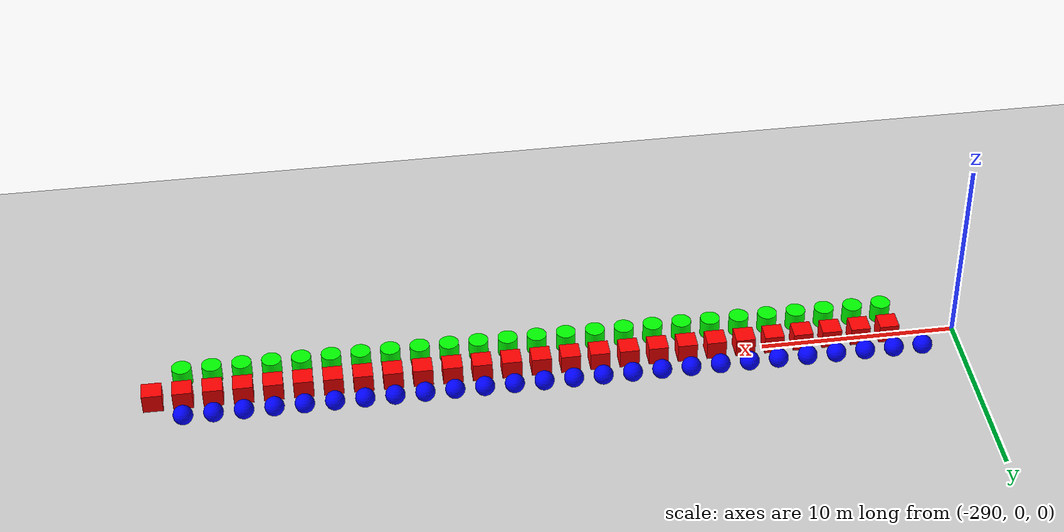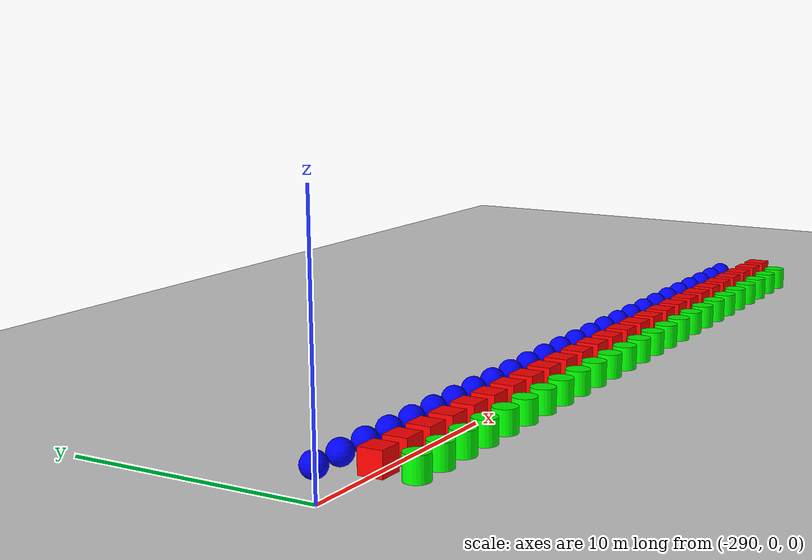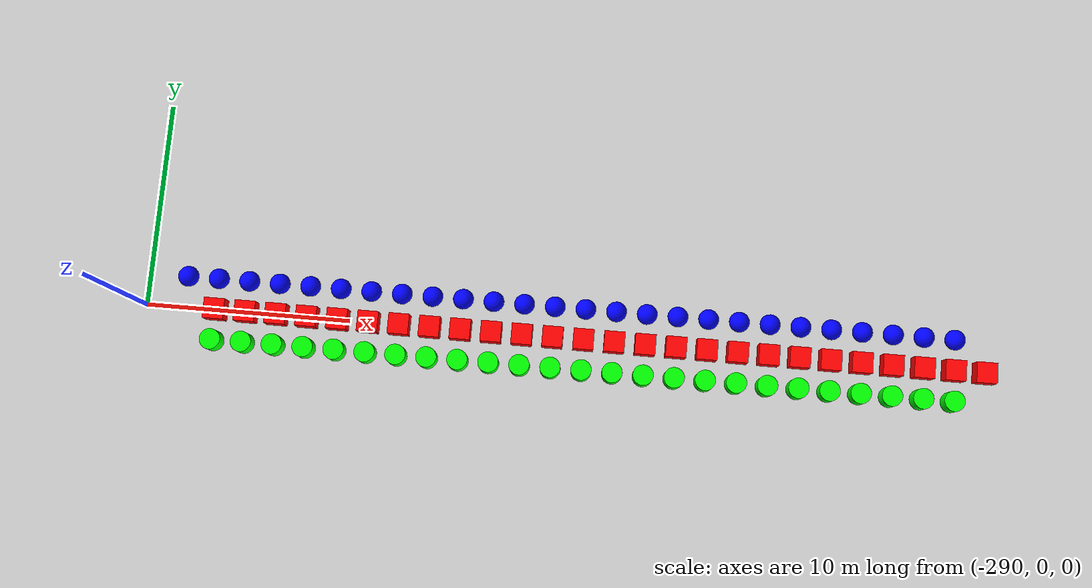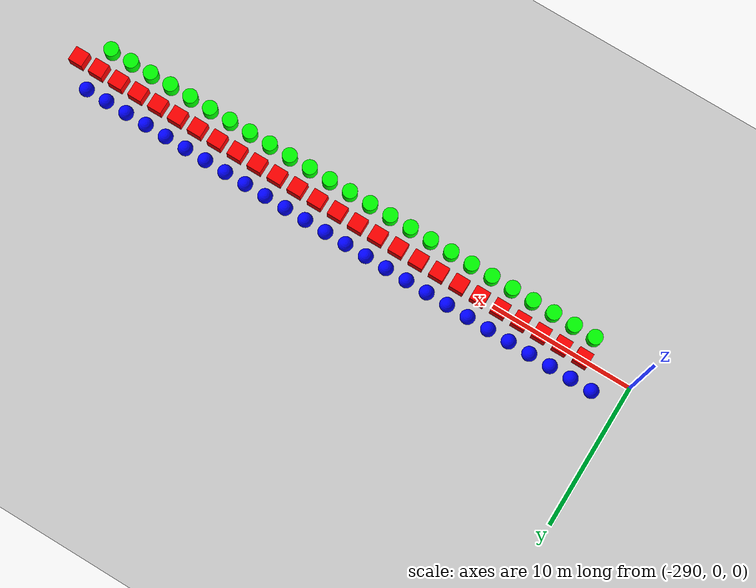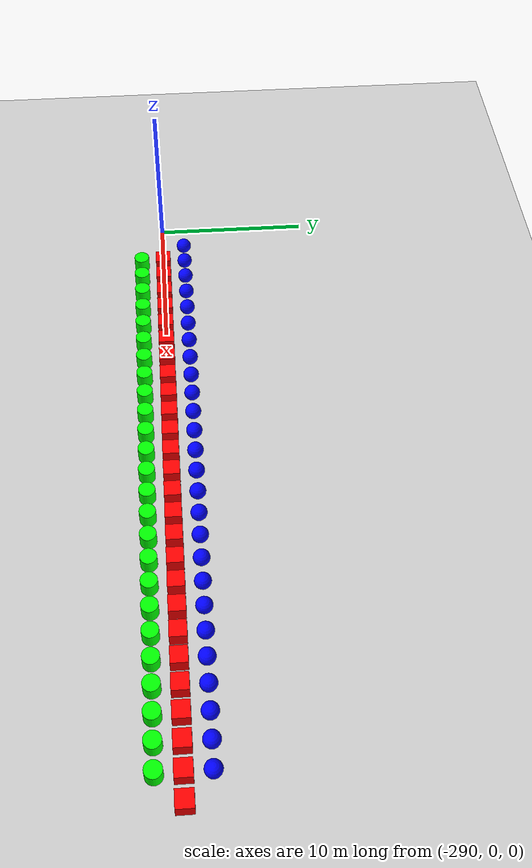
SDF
<sdf version="1.6">
 <world name="shapes">
  <model name="ground_plane">
   <static>true</static>
   <link name="link">
    <collision name="collision">
     <geometry><plane><normal>0 0 1</normal><size>100 100</size></plane></geometry>
    </collision>
    <visual name="visual">
     <geometry><plane><normal>0 0 1</normal><size>100 100</size></plane></geometry>
     <material>
      <ambient>0.8 0.8 0.8 1</ambient>
      <diffuse>0.8 0.8 0.8 1</diffuse>
      <specular>0.8 0.8 0.8 1</specular>
     </material>
    </visual>
   </link>
  </model>
  <model name="sphere_308">
   <static>false</static>
   <pose>-288.0 1.5 0.5 0 0 0</pose>
   <link name="sphere_link">
    <inertial>
     <inertia><ixx>3</ixx><ixy>0</ixy><ixz>0</ixz><iyy>3</iyy><iyz>0</iyz><izz>3</izz></inertia>
     <mass>3.0</mass>
    </inertial>
    <collision name="sphere_collision"><geometry><sphere><radius>0.5</radius></sphere></geometry></collision>
    <visual name="sphere_visual">
     <geometry><sphere><radius>0.5</radius></sphere></geometry>
     <material><ambient>0 0 1 1</ambient><diffuse>0 0 1 1</diffuse><specular>0 0 1 1</specular></material>
    </visual>
   </link>
  </model>
  <model name="box_309">
   <static>false</static>
   <pose>-286.5 0 0.5 0 0 0</pose>
   <link name="box_link">
    <inertial>
     <inertia><ixx>1</ixx><ixy>0</ixy><ixz>0</ixz><iyy>1</iyy><iyz>0</iyz><izz>1</izz></inertia>
     <mass>1.0</mass>
    </inertial>
    <collision name="box_collision"><geometry><box><size>1 1 1</size></box></geometry></collision>
    <visual name="box_visual">
     <geometry><box><size>1 1 1</size></box></geometry>
     <material><ambient>1 0 0 1</ambient><diffuse>1 0 0 1</diffuse><specular>1 0 0 1</specular></material>
    </visual>
   </link>
  </model>
  <model name="cylinder_309">
   <static>false</static>
   <pose>-286.5 -1.5 0.5 0 0 0</pose>
   <link name="cylinder_link">
    <inertial>
     <inertia><ixx>2</ixx><ixy>0</ixy><ixz>0</ixz><iyy>2</iyy><iyz>0</iyz><izz>2</izz></inertia>
     <mass>2.0</mass>
    </inertial>
    <collision name="cylinder_collision">
     <geometry><cylinder><radius>0.5</radius><length>1.0</length></cylinder></geometry>
    </collision>
    <visual name="cylinder_visual">
     <geometry><cylinder><radius>0.5</radius><length>1.0</length></cylinder></geometry>
     <material><ambient>0 1 0 1</ambient><diffuse>0 1 0 1</diffuse><specular>0 1 0 1</specular></material>
    </visual>
   </link>
  </model>
  <model name="sphere_309">
   <static>false</static>
   <pose>-286.5 1.5 0.5 0 0 0</pose>
   <link name="sphere_link">
    <inertial>
     <inertia><ixx>3</ixx><ixy>0</ixy><ixz>0</ixz><iyy>3</iyy><iyz>0</iyz><izz>3</izz></inertia>
     <mass>3.0</mass>
    </inertial>
    <collision name="sphere_collision"><geometry><sphere><radius>0.5</radius></sphere></geometry></collision>
    <visual name="sphere_visual">
     <geometry><sphere><radius>0.5</radius></sphere></geometry>
     <material><ambient>0 0 1 1</ambient><diffuse>0 0 1 1</diffuse><specular>0 0 1 1</specular></material>
    </visual>
   </link>
  </model>
  <model name="box_310">
   <static>false</static>
   <pose>-285.0 0 0.5 0 0 0</pose>
   <link name="box_link">
    <inertial>
     <inertia><ixx>1</ixx><ixy>0</ixy><ixz>0</ixz><iyy>1</iyy><iyz>0</iyz><izz>1</izz></inertia>
     <mass>1.0</mass>
    </inertial>
    <collision name="box_collision"><geometry><box><size>1 1 1</size></box></geometry></collision>
    <visual name="box_visual">
     <geometry><box><size>1 1 1</size></box></geometry>
     <material><ambient>1 0 0 1</ambient><diffuse>1 0 0 1</diffuse><specular>1 0 0 1</specular></material>
    </visual>
   </link>
  </model>
  <model name="cylinder_310">
   <static>false</static>
   <pose>-285.0 -1.5 0.5 0 0 0</pose>
   <link name="cylinder_link">
    <inertial>
     <inertia><ixx>2</ixx><ixy>0</ixy><ixz>0</ixz><iyy>2</iyy><iyz>0</iyz><izz>2</izz></inertia>
     <mass>2.0</mass>
    </inertial>
    <collision name="cylinder_collision">
     <geometry><cylinder><radius>0.5</radius><length>1.0</length></cylinder></geometry>
    </collision>
    <visual name="cylinder_visual">
     <geometry><cylinder><radius>0.5</radius><length>1.0</length></cylinder></geometry>
     <material><ambient>0 1 0 1</ambient><diffuse>0 1 0 1</diffuse><specular>0 1 0 1</specular></material>
    </visual>
   </link>
  </model>
  <model name="sphere_310">
   <static>false</static>
   <pose>-285.0 1.5 0.5 0 0 0</pose>
   <link name="sphere_link">
    <inertial>
     <inertia><ixx>3</ixx><ixy>0</ixy><ixz>0</ixz><iyy>3</iyy><iyz>0</iyz><izz>3</izz></inertia>
     <mass>3.0</mass>
    </inertial>
    <collision name="sphere_collision"><geometry><sphere><radius>0.5</radius></sphere></geometry></collision>
    <visual name="sphere_visual">
     <geometry><sphere><radius>0.5</radius></sphere></geometry>
     <material><ambient>0 0 1 1</ambient><diffuse>0 0 1 1</diffuse><specular>0 0 1 1</specular></material>
    </visual>
   </link>
  </model>
  <model name="box_311">
   <static>false</static>
   <pose>-283.5 0 0.5 0 0 0</pose>
   <link name="box_link">
    <inertial>
     <inertia><ixx>1</ixx><ixy>0</ixy><ixz>0</ixz><iyy>1</iyy><iyz>0</iyz><izz>1</izz></inertia>
     <mass>1.0</mass>
    </inertial>
    <collision name="box_collision"><geometry><box><size>1 1 1</size></box></geometry></collision>
    <visual name="box_visual">
     <geometry><box><size>1 1 1</size></box></geometry>
     <material><ambient>1 0 0 1</ambient><diffuse>1 0 0 1</diffuse><specular>1 0 0 1</specular></material>
    </visual>
   </link>
  </model>
  <model name="cylinder_311">
   <static>false</static>
   <pose>-283.5 -1.5 0.5 0 0 0</pose>
   <link name="cylinder_link">
    <inertial>
     <inertia><ixx>2</ixx><ixy>0</ixy><ixz>0</ixz><iyy>2</iyy><iyz>0</iyz><izz>2</izz></inertia>
     <mass>2.0</mass>
    </inertial>
    <collision name="cylinder_collision">
     <geometry><cylinder><radius>0.5</radius><length>1.0</length></cylinder></geometry>
    </collision>
    <visual name="cylinder_visual">
     <geometry><cylinder><radius>0.5</radius><length>1.0</length></cylinder></geometry>
     <material><ambient>0 1 0 1</ambient><diffuse>0 1 0 1</diffuse><specular>0 1 0 1</specular></material>
    </visual>
   </link>
  </model>
  <model name="sphere_311">
   <static>false</static>
   <pose>-283.5 1.5 0.5 0 0 0</pose>
   <link name="sphere_link">
    <inertial>
     <inertia><ixx>3</ixx><ixy>0</ixy><ixz>0</ixz><iyy>3</iyy><iyz>0</iyz><izz>3</izz></inertia>
     <mass>3.0</mass>
    </inertial>
    <collision name="sphere_collision"><geometry><sphere><radius>0.5</radius></sphere></geometry></collision>
    <visual name="sphere_visual">
     <geometry><sphere><radius>0.5</radius></sphere></geometry>
     <material><ambient>0 0 1 1</ambient><diffuse>0 0 1 1</diffuse><specular>0 0 1 1</specular></material>
    </visual>
   </link>
  </model>
  <model name="box_312">
   <static>false</static>
   <pose>-282.0 0 0.5 0 0 0</pose>
   <link name="box_link">
    <inertial>
     <inertia><ixx>1</ixx><ixy>0</ixy><ixz>0</ixz><iyy>1</iyy><iyz>0</iyz><izz>1</izz></inertia>
     <mass>1.0</mass>
    </inertial>
    <collision name="box_collision"><geometry><box><size>1 1 1</size></box></geometry></collision>
    <visual name="box_visual">
     <geometry><box><size>1 1 1</size></box></geometry>
     <material><ambient>1 0 0 1</ambient><diffuse>1 0 0 1</diffuse><specular>1 0 0 1</specular></material>
    </visual>
   </link>
  </model>
  <model name="cylinder_312">
   <static>false</static>
   <pose>-282.0 -1.5 0.5 0 0 0</pose>
   <link name="cylinder_link">
    <inertial>
     <inertia><ixx>2</ixx><ixy>0</ixy><ixz>0</ixz><iyy>2</iyy><iyz>0</iyz><izz>2</izz></inertia>
     <mass>2.0</mass>
    </inertial>
    <collision name="cylinder_collision">
     <geometry><cylinder><radius>0.5</radius><length>1.0</length></cylinder></geometry>
    </collision>
    <visual name="cylinder_visual">
     <geometry><cylinder><radius>0.5</radius><length>1.0</length></cylinder></geometry>
     <material><ambient>0 1 0 1</ambient><diffuse>0 1 0 1</diffuse><specular>0 1 0 1</specular></material>
    </visual>
   </link>
  </model>
  <model name="sphere_312">
   <static>false</static>
   <pose>-282.0 1.5 0.5 0 0 0</pose>
   <link name="sphere_link">
    <inertial>
     <inertia><ixx>3</ixx><ixy>0</ixy><ixz>0</ixz><iyy>3</iyy><iyz>0</iyz><izz>3</izz></inertia>
     <mass>3.0</mass>
    </inertial>
    <collision name="sphere_collision"><geometry><sphere><radius>0.5</radius></sphere></geometry></collision>
    <visual name="sphere_visual">
     <geometry><sphere><radius>0.5</radius></sphere></geometry>
     <material><ambient>0 0 1 1</ambient><diffuse>0 0 1 1</diffuse><specular>0 0 1 1</specular></material>
    </visual>
   </link>
  </model>
  <model name="box_313">
   <static>false</static>
   <pose>-280.5 0 0.5 0 0 0</pose>
   <link name="box_link">
    <inertial>
     <inertia><ixx>1</ixx><ixy>0</ixy><ixz>0</ixz><iyy>1</iyy><iyz>0</iyz><izz>1</izz></inertia>
     <mass>1.0</mass>
    </inertial>
    <collision name="box_collision"><geometry><box><size>1 1 1</size></box></geometry></collision>
    <visual name="box_visual">
     <geometry><box><size>1 1 1</size></box></geometry>
     <material><ambient>1 0 0 1</ambient><diffuse>1 0 0 1</diffuse><specular>1 0 0 1</specular></material>
    </visual>
   </link>
  </model>
  <model name="cylinder_313">
   <static>false</static>
   <pose>-280.5 -1.5 0.5 0 0 0</pose>
   <link name="cylinder_link">
    <inertial>
     <inertia><ixx>2</ixx><ixy>0</ixy><ixz>0</ixz><iyy>2</iyy><iyz>0</iyz><izz>2</izz></inertia>
     <mass>2.0</mass>
    </inertial>
    <collision name="cylinder_collision">
     <geometry><cylinder><radius>0.5</radius><length>1.0</length></cylinder></geometry>
    </collision>
    <visual name="cylinder_visual">
     <geometry><cylinder><radius>0.5</radius><length>1.0</length></cylinder></geometry>
     <material><ambient>0 1 0 1</ambient><diffuse>0 1 0 1</diffuse><specular>0 1 0 1</specular></material>
    </visual>
   </link>
  </model>
  <model name="sphere_313">
   <static>false</static>
   <pose>-280.5 1.5 0.5 0 0 0</pose>
   <link name="sphere_link">
    <inertial>
     <inertia><ixx>3</ixx><ixy>0</ixy><ixz>0</ixz><iyy>3</iyy><iyz>0</iyz><izz>3</izz></inertia>
     <mass>3.0</mass>
    </inertial>
    <collision name="sphere_collision"><geometry><sphere><radius>0.5</radius></sphere></geometry></collision>
    <visual name="sphere_visual">
     <geometry><sphere><radius>0.5</radius></sphere></geometry>
     <material><ambient>0 0 1 1</ambient><diffuse>0 0 1 1</diffuse><specular>0 0 1 1</specular></material>
    </visual>
   </link>
  </model>
  <model name="box_314">
   <static>false</static>
   <pose>-279.0 0 0.5 0 0 0</pose>
   <link name="box_link">
    <inertial>
     <inertia><ixx>1</ixx><ixy>0</ixy><ixz>0</ixz><iyy>1</iyy><iyz>0</iyz><izz>1</izz></inertia>
     <mass>1.0</mass>
    </inertial>
    <collision name="box_collision"><geometry><box><size>1 1 1</size></box></geometry></collision>
    <visual name="box_visual">
     <geometry><box><size>1 1 1</size></box></geometry>
     <material><ambient>1 0 0 1</ambient><diffuse>1 0 0 1</diffuse><specular>1 0 0 1</specular></material>
    </visual>
   </link>
  </model>
  <model name="cylinder_314">
   <static>false</static>
   <pose>-279.0 -1.5 0.5 0 0 0</pose>
   <link name="cylinder_link">
    <inertial>
     <inertia><ixx>2</ixx><ixy>0</ixy><ixz>0</ixz><iyy>2</iyy><iyz>0</iyz><izz>2</izz></inertia>
     <mass>2.0</mass>
    </inertial>
    <collision name="cylinder_collision">
     <geometry><cylinder><radius>0.5</radius><length>1.0</length></cylinder></geometry>
    </collision>
    <visual name="cylinder_visual">
     <geometry><cylinder><radius>0.5</radius><length>1.0</length></cylinder></geometry>
     <material><ambient>0 1 0 1</ambient><diffuse>0 1 0 1</diffuse><specular>0 1 0 1</specular></material>
    </visual>
   </link>
  </model>
  <model name="sphere_314">
   <static>false</static>
   <pose>-279.0 1.5 0.5 0 0 0</pose>
   <link name="sphere_link">
    <inertial>
     <inertia><ixx>3</ixx><ixy>0</ixy><ixz>0</ixz><iyy>3</iyy><iyz>0</iyz><izz>3</izz></inertia>
     <mass>3.0</mass>
    </inertial>
    <collision name="sphere_collision"><geometry><sphere><radius>0.5</radius></sphere></geometry></collision>
    <visual name="sphere_visual">
     <geometry><sphere><radius>0.5</radius></sphere></geometry>
     <material><ambient>0 0 1 1</ambient><diffuse>0 0 1 1</diffuse><specular>0 0 1 1</specular></material>
    </visual>
   </link>
  </model>
  <model name="box_315">
   <static>false</static>
   <pose>-277.5 0 0.5 0 0 0</pose>
   <link name="box_link">
    <inertial>
     <inertia><ixx>1</ixx><ixy>0</ixy><ixz>0</ixz><iyy>1</iyy><iyz>0</iyz><izz>1</izz></inertia>
     <mass>1.0</mass>
    </inertial>
    <collision name="box_collision"><geometry><box><size>1 1 1</size></box></geometry></collision>
    <visual name="box_visual">
     <geometry><box><size>1 1 1</size></box></geometry>
     <material><ambient>1 0 0 1</ambient><diffuse>1 0 0 1</diffuse><specular>1 0 0 1</specular></material>
    </visual>
   </link>
  </model>
  <model name="cylinder_315">
   <static>false</static>
   <pose>-277.5 -1.5 0.5 0 0 0</pose>
   <link name="cylinder_link">
    <inertial>
     <inertia><ixx>2</ixx><ixy>0</ixy><ixz>0</ixz><iyy>2</iyy><iyz>0</iyz><izz>2</izz></inertia>
     <mass>2.0</mass>
    </inertial>
    <collision name="cylinder_collision">
     <geometry><cylinder><radius>0.5</radius><length>1.0</length></cylinder></geometry>
    </collision>
    <visual name="cylinder_visual">
     <geometry><cylinder><radius>0.5</radius><length>1.0</length></cylinder></geometry>
     <material><ambient>0 1 0 1</ambient><diffuse>0 1 0 1</diffuse><specular>0 1 0 1</specular></material>
    </visual>
   </link>
  </model>
  <model name="sphere_315">
   <static>false</static>
   <pose>-277.5 1.5 0.5 0 0 0</pose>
   <link name="sphere_link">
    <inertial>
     <inertia><ixx>3</ixx><ixy>0</ixy><ixz>0</ixz><iyy>3</iyy><iyz>0</iyz><izz>3</izz></inertia>
     <mass>3.0</mass>
    </inertial>
    <collision name="sphere_collision"><geometry><sphere><radius>0.5</radius></sphere></geometry></collision>
    <visual name="sphere_visual">
     <geometry><sphere><radius>0.5</radius></sphere></geometry>
     <material><ambient>0 0 1 1</ambient><diffuse>0 0 1 1</diffuse><specular>0 0 1 1</specular></material>
    </visual>
   </link>
  </model>
  <model name="box_316">
   <static>false</static>
   <pose>-276.0 0 0.5 0 0 0</pose>
   <link name="box_link">
    <inertial>
     <inertia><ixx>1</ixx><ixy>0</ixy><ixz>0</ixz><iyy>1</iyy><iyz>0</iyz><izz>1</izz></inertia>
     <mass>1.0</mass>
    </inertial>
    <collision name="box_collision"><geometry><box><size>1 1 1</size></box></geometry></collision>
    <visual name="box_visual">
     <geometry><box><size>1 1 1</size></box></geometry>
     <material><ambient>1 0 0 1</ambient><diffuse>1 0 0 1</diffuse><specular>1 0 0 1</specular></material>
    </visual>
   </link>
  </model>
  <model name="cylinder_316">
   <static>false</static>
   <pose>-276.0 -1.5 0.5 0 0 0</pose>
   <link name="cylinder_link">
    <inertial>
     <inertia><ixx>2</ixx><ixy>0</ixy><ixz>0</ixz><iyy>2</iyy><iyz>0</iyz><izz>2</izz></inertia>
     <mass>2.0</mass>
    </inertial>
    <collision name="cylinder_collision">
     <geometry><cylinder><radius>0.5</radius><length>1.0</length></cylinder></geometry>
    </collision>
    <visual name="cylinder_visual">
     <geometry><cylinder><radius>0.5</radius><length>1.0</length></cylinder></geometry>
     <material><ambient>0 1 0 1</ambient><diffuse>0 1 0 1</diffuse><specular>0 1 0 1</specular></material>
    </visual>
   </link>
  </model>
  <model name="sphere_316">
   <static>false</static>
   <pose>-276.0 1.5 0.5 0 0 0</pose>
   <link name="sphere_link">
    <inertial>
     <inertia><ixx>3</ixx><ixy>0</ixy><ixz>0</ixz><iyy>3</iyy><iyz>0</iyz><izz>3</izz></inertia>
     <mass>3.0</mass>
    </inertial>
    <collision name="sphere_collision"><geometry><sphere><radius>0.5</radius></sphere></geometry></collision>
    <visual name="sphere_visual">
     <geometry><sphere><radius>0.5</radius></sphere></geometry>
     <material><ambient>0 0 1 1</ambient><diffuse>0 0 1 1</diffuse><specular>0 0 1 1</specular></material>
    </visual>
   </link>
  </model>
  <model name="box_317">
   <static>false</static>
   <pose>-274.5 0 0.5 0 0 0</pose>
   <link name="box_link">
    <inertial>
     <inertia><ixx>1</ixx><ixy>0</ixy><ixz>0</ixz><iyy>1</iyy><iyz>0</iyz><izz>1</izz></inertia>
     <mass>1.0</mass>
    </inertial>
    <collision name="box_collision"><geometry><box><size>1 1 1</size></box></geometry></collision>
    <visual name="box_visual">
     <geometry><box><size>1 1 1</size></box></geometry>
     <material><ambient>1 0 0 1</ambient><diffuse>1 0 0 1</diffuse><specular>1 0 0 1</specular></material>
    </visual>
   </link>
  </model>
  <model name="cylinder_317">
   <static>false</static>
   <pose>-274.5 -1.5 0.5 0 0 0</pose>
   <link name="cylinder_link">
    <inertial>
     <inertia><ixx>2</ixx><ixy>0</ixy><ixz>0</ixz><iyy>2</iyy><iyz>0</iyz><izz>2</izz></inertia>
     <mass>2.0</mass>
    </inertial>
    <collision name="cylinder_collision">
     <geometry><cylinder><radius>0.5</radius><length>1.0</length></cylinder></geometry>
    </collision>
    <visual name="cylinder_visual">
     <geometry><cylinder><radius>0.5</radius><length>1.0</length></cylinder></geometry>
     <material><ambient>0 1 0 1</ambient><diffuse>0 1 0 1</diffuse><specular>0 1 0 1</specular></material>
    </visual>
   </link>
  </model>
  <model name="sphere_317">
   <static>false</static>
   <pose>-274.5 1.5 0.5 0 0 0</pose>
   <link name="sphere_link">
    <inertial>
     <inertia><ixx>3</ixx><ixy>0</ixy><ixz>0</ixz><iyy>3</iyy><iyz>0</iyz><izz>3</izz></inertia>
     <mass>3.0</mass>
    </inertial>
    <collision name="sphere_collision"><geometry><sphere><radius>0.5</radius></sphere></geometry></collision>
    <visual name="sphere_visual">
     <geometry><sphere><radius>0.5</radius></sphere></geometry>
     <material><ambient>0 0 1 1</ambient><diffuse>0 0 1 1</diffuse><specular>0 0 1 1</specular></material>
    </visual>
   </link>
  </model>
  <model name="box_318">
   <static>false</static>
   <pose>-273.0 0 0.5 0 0 0</pose>
   <link name="box_link">
    <inertial>
     <inertia><ixx>1</ixx><ixy>0</ixy><ixz>0</ixz><iyy>1</iyy><iyz>0</iyz><izz>1</izz></inertia>
     <mass>1.0</mass>
    </inertial>
    <collision name="box_collision"><geometry><box><size>1 1 1</size></box></geometry></collision>
    <visual name="box_visual">
     <geometry><box><size>1 1 1</size></box></geometry>
     <material><ambient>1 0 0 1</ambient><diffuse>1 0 0 1</diffuse><specular>1 0 0 1</specular></material>
    </visual>
   </link>
  </model>
  <model name="cylinder_318">
   <static>false</static>
   <pose>-273.0 -1.5 0.5 0 0 0</pose>
   <link name="cylinder_link">
    <inertial>
     <inertia><ixx>2</ixx><ixy>0</ixy><ixz>0</ixz><iyy>2</iyy><iyz>0</iyz><izz>2</izz></inertia>
     <mass>2.0</mass>
    </inertial>
    <collision name="cylinder_collision">
     <geometry><cylinder><radius>0.5</radius><length>1.0</length></cylinder></geometry>
    </collision>
    <visual name="cylinder_visual">
     <geometry><cylinder><radius>0.5</radius><length>1.0</length></cylinder></geometry>
     <material><ambient>0 1 0 1</ambient><diffuse>0 1 0 1</diffuse><specular>0 1 0 1</specular></material>
    </visual>
   </link>
  </model>
  <model name="sphere_318">
   <static>false</static>
   <pose>-273.0 1.5 0.5 0 0 0</pose>
   <link name="sphere_link">
    <inertial>
     <inertia><ixx>3</ixx><ixy>0</ixy><ixz>0</ixz><iyy>3</iyy><iyz>0</iyz><izz>3</izz></inertia>
     <mass>3.0</mass>
    </inertial>
    <collision name="sphere_collision"><geometry><sphere><radius>0.5</radius></sphere></geometry></collision>
    <visual name="sphere_visual">
     <geometry><sphere><radius>0.5</radius></sphere></geometry>
     <material><ambient>0 0 1 1</ambient><diffuse>0 0 1 1</diffuse><specular>0 0 1 1</specular></material>
    </visual>
   </link>
  </model>
  <model name="box_319">
   <static>false</static>
   <pose>-271.5 0 0.5 0 0 0</pose>
   <link name="box_link">
    <inertial>
     <inertia><ixx>1</ixx><ixy>0</ixy><ixz>0</ixz><iyy>1</iyy><iyz>0</iyz><izz>1</izz></inertia>
     <mass>1.0</mass>
    </inertial>
    <collision name="box_collision"><geometry><box><size>1 1 1</size></box></geometry></collision>
    <visual name="box_visual">
     <geometry><box><size>1 1 1</size></box></geometry>
     <material><ambient>1 0 0 1</ambient><diffuse>1 0 0 1</diffuse><specular>1 0 0 1</specular></material>
    </visual>
   </link>
  </model>
  <model name="cylinder_319">
   <static>false</static>
   <pose>-271.5 -1.5 0.5 0 0 0</pose>
   <link name="cylinder_link">
    <inertial>
     <inertia><ixx>2</ixx><ixy>0</ixy><ixz>0</ixz><iyy>2</iyy><iyz>0</iyz><izz>2</izz></inertia>
     <mass>2.0</mass>
    </inertial>
    <collision name="cylinder_collision">
     <geometry><cylinder><radius>0.5</radius><length>1.0</length></cylinder></geometry>
    </collision>
    <visual name="cylinder_visual">
     <geometry><cylinder><radius>0.5</radius><length>1.0</length></cylinder></geometry>
     <material><ambient>0 1 0 1</ambient><diffuse>0 1 0 1</diffuse><specular>0 1 0 1</specular></material>
    </visual>
   </link>
  </model>
  <model name="sphere_319">
   <static>false</static>
   <pose>-271.5 1.5 0.5 0 0 0</pose>
   <link name="sphere_link">
    <inertial>
     <inertia><ixx>3</ixx><ixy>0</ixy><ixz>0</ixz><iyy>3</iyy><iyz>0</iyz><izz>3</izz></inertia>
     <mass>3.0</mass>
    </inertial>
    <collision name="sphere_collision"><geometry><sphere><radius>0.5</radius></sphere></geometry></collision>
    <visual name="sphere_visual">
     <geometry><sphere><radius>0.5</radius></sphere></geometry>
     <material><ambient>0 0 1 1</ambient><diffuse>0 0 1 1</diffuse><specular>0 0 1 1</specular></material>
    </visual>
   </link>
  </model>
  <model name="box_320">
   <static>false</static>
   <pose>-270.0 0 0.5 0 0 0</pose>
   <link name="box_link">
    <inertial>
     <inertia><ixx>1</ixx><ixy>0</ixy><ixz>0</ixz><iyy>1</iyy><iyz>0</iyz><izz>1</izz></inertia>
     <mass>1.0</mass>
    </inertial>
    <collision name="box_collision"><geometry><box><size>1 1 1</size></box></geometry></collision>
    <visual name="box_visual">
     <geometry><box><size>1 1 1</size></box></geometry>
     <material><ambient>1 0 0 1</ambient><diffuse>1 0 0 1</diffuse><specular>1 0 0 1</specular></material>
    </visual>
   </link>
  </model>
  <model name="cylinder_320">
   <static>false</static>
   <pose>-270.0 -1.5 0.5 0 0 0</pose>
   <link name="cylinder_link">
    <inertial>
     <inertia><ixx>2</ixx><ixy>0</ixy><ixz>0</ixz><iyy>2</iyy><iyz>0</iyz><izz>2</izz></inertia>
     <mass>2.0</mass>
    </inertial>
    <collision name="cylinder_collision">
     <geometry><cylinder><radius>0.5</radius><length>1.0</length></cylinder></geometry>
    </collision>
    <visual name="cylinder_visual">
     <geometry><cylinder><radius>0.5</radius><length>1.0</length></cylinder></geometry>
     <material><ambient>0 1 0 1</ambient><diffuse>0 1 0 1</diffuse><specular>0 1 0 1</specular></material>
    </visual>
   </link>
  </model>
  <model name="sphere_320">
   <static>false</static>
   <pose>-270.0 1.5 0.5 0 0 0</pose>
   <link name="sphere_link">
    <inertial>
     <inertia><ixx>3</ixx><ixy>0</ixy><ixz>0</ixz><iyy>3</iyy><iyz>0</iyz><izz>3</izz></inertia>
     <mass>3.0</mass>
    </inertial>
    <collision name="sphere_collision"><geometry><sphere><radius>0.5</radius></sphere></geometry></collision>
    <visual name="sphere_visual">
     <geometry><sphere><radius>0.5</radius></sphere></geometry>
     <material><ambient>0 0 1 1</ambient><diffuse>0 0 1 1</diffuse><specular>0 0 1 1</specular></material>
    </visual>
   </link>
  </model>
  <model name="box_321">
   <static>false</static>
   <pose>-268.5 0 0.5 0 0 0</pose>
   <link name="box_link">
    <inertial>
     <inertia><ixx>1</ixx><ixy>0</ixy><ixz>0</ixz><iyy>1</iyy><iyz>0</iyz><izz>1</izz></inertia>
     <mass>1.0</mass>
    </inertial>
    <collision name="box_collision"><geometry><box><size>1 1 1</size></box></geometry></collision>
    <visual name="box_visual">
     <geometry><box><size>1 1 1</size></box></geometry>
     <material><ambient>1 0 0 1</ambient><diffuse>1 0 0 1</diffuse><specular>1 0 0 1</specular></material>
    </visual>
   </link>
  </model>
  <model name="cylinder_321">
   <static>false</static>
   <pose>-268.5 -1.5 0.5 0 0 0</pose>
   <link name="cylinder_link">
    <inertial>
     <inertia><ixx>2</ixx><ixy>0</ixy><ixz>0</ixz><iyy>2</iyy><iyz>0</iyz><izz>2</izz></inertia>
     <mass>2.0</mass>
    </inertial>
    <collision name="cylinder_collision">
     <geometry><cylinder><radius>0.5</radius><length>1.0</length></cylinder></geometry>
    </collision>
    <visual name="cylinder_visual">
     <geometry><cylinder><radius>0.5</radius><length>1.0</length></cylinder></geometry>
     <material><ambient>0 1 0 1</ambient><diffuse>0 1 0 1</diffuse><specular>0 1 0 1</specular></material>
    </visual>
   </link>
  </model>
  <model name="sphere_321">
   <static>false</static>
   <pose>-268.5 1.5 0.5 0 0 0</pose>
   <link name="sphere_link">
    <inertial>
     <inertia><ixx>3</ixx><ixy>0</ixy><ixz>0</ixz><iyy>3</iyy><iyz>0</iyz><izz>3</izz></inertia>
     <mass>3.0</mass>
    </inertial>
    <collision name="sphere_collision"><geometry><sphere><radius>0.5</radius></sphere></geometry></collision>
    <visual name="sphere_visual">
     <geometry><sphere><radius>0.5</radius></sphere></geometry>
     <material><ambient>0 0 1 1</ambient><diffuse>0 0 1 1</diffuse><specular>0 0 1 1</specular></material>
    </visual>
   </link>
  </model>
  <model name="box_322">
   <static>false</static>
   <pose>-267.0 0 0.5 0 0 0</pose>
   <link name="box_link">
    <inertial>
     <inertia><ixx>1</ixx><ixy>0</ixy><ixz>0</ixz><iyy>1</iyy><iyz>0</iyz><izz>1</izz></inertia>
     <mass>1.0</mass>
    </inertial>
    <collision name="box_collision"><geometry><box><size>1 1 1</size></box></geometry></collision>
    <visual name="box_visual">
     <geometry><box><size>1 1 1</size></box></geometry>
     <material><ambient>1 0 0 1</ambient><diffuse>1 0 0 1</diffuse><specular>1 0 0 1</specular></material>
    </visual>
   </link>
  </model>
  <model name="cylinder_322">
   <static>false</static>
   <pose>-267.0 -1.5 0.5 0 0 0</pose>
   <link name="cylinder_link">
    <inertial>
     <inertia><ixx>2</ixx><ixy>0</ixy><ixz>0</ixz><iyy>2</iyy><iyz>0</iyz><izz>2</izz></inertia>
     <mass>2.0</mass>
    </inertial>
    <collision name="cylinder_collision">
     <geometry><cylinder><radius>0.5</radius><length>1.0</length></cylinder></geometry>
    </collision>
    <visual name="cylinder_visual">
     <geometry><cylinder><radius>0.5</radius><length>1.0</length></cylinder></geometry>
     <material><ambient>0 1 0 1</ambient><diffuse>0 1 0 1</diffuse><specular>0 1 0 1</specular></material>
    </visual>
   </link>
  </model>
  <model name="sphere_322">
   <static>false</static>
   <pose>-267.0 1.5 0.5 0 0 0</pose>
   <link name="sphere_link">
    <inertial>
     <inertia><ixx>3</ixx><ixy>0</ixy><ixz>0</ixz><iyy>3</iyy><iyz>0</iyz><izz>3</izz></inertia>
     <mass>3.0</mass>
    </inertial>
    <collision name="sphere_collision"><geometry><sphere><radius>0.5</radius></sphere></geometry></collision>
    <visual name="sphere_visual">
     <geometry><sphere><radius>0.5</radius></sphere></geometry>
     <material><ambient>0 0 1 1</ambient><diffuse>0 0 1 1</diffuse><specular>0 0 1 1</specular></material>
    </visual>
   </link>
  </model>
  <model name="box_323">
   <static>false</static>
   <pose>-265.5 0 0.5 0 0 0</pose>
   <link name="box_link">
    <inertial>
     <inertia><ixx>1</ixx><ixy>0</ixy><ixz>0</ixz><iyy>1</iyy><iyz>0</iyz><izz>1</izz></inertia>
     <mass>1.0</mass>
    </inertial>
    <collision name="box_collision"><geometry><box><size>1 1 1</size></box></geometry></collision>
    <visual name="box_visual">
     <geometry><box><size>1 1 1</size></box></geometry>
     <material><ambient>1 0 0 1</ambient><diffuse>1 0 0 1</diffuse><specular>1 0 0 1</specular></material>
    </visual>
   </link>
  </model>
  <model name="cylinder_323">
   <static>false</static>
   <pose>-265.5 -1.5 0.5 0 0 0</pose>
   <link name="cylinder_link">
    <inertial>
     <inertia><ixx>2</ixx><ixy>0</ixy><ixz>0</ixz><iyy>2</iyy><iyz>0</iyz><izz>2</izz></inertia>
     <mass>2.0</mass>
    </inertial>
    <collision name="cylinder_collision">
     <geometry><cylinder><radius>0.5</radius><length>1.0</length></cylinder></geometry>
    </collision>
    <visual name="cylinder_visual">
     <geometry><cylinder><radius>0.5</radius><length>1.0</length></cylinder></geometry>
     <material><ambient>0 1 0 1</ambient><diffuse>0 1 0 1</diffuse><specular>0 1 0 1</specular></material>
    </visual>
   </link>
  </model>
  <model name="sphere_323">
   <static>false</static>
   <pose>-265.5 1.5 0.5 0 0 0</pose>
   <link name="sphere_link">
    <inertial>
     <inertia><ixx>3</ixx><ixy>0</ixy><ixz>0</ixz><iyy>3</iyy><iyz>0</iyz><izz>3</izz></inertia>
     <mass>3.0</mass>
    </inertial>
    <collision name="sphere_collision"><geometry><sphere><radius>0.5</radius></sphere></geometry></collision>
    <visual name="sphere_visual">
     <geometry><sphere><radius>0.5</radius></sphere></geometry>
     <material><ambient>0 0 1 1</ambient><diffuse>0 0 1 1</diffuse><specular>0 0 1 1</specular></material>
    </visual>
   </link>
  </model>
  <model name="box_324">
   <static>false</static>
   <pose>-264.0 0 0.5 0 0 0</pose>
   <link name="box_link">
    <inertial>
     <inertia><ixx>1</ixx><ixy>0</ixy><ixz>0</ixz><iyy>1</iyy><iyz>0</iyz><izz>1</izz></inertia>
     <mass>1.0</mass>
    </inertial>
    <collision name="box_collision"><geometry><box><size>1 1 1</size></box></geometry></collision>
    <visual name="box_visual">
     <geometry><box><size>1 1 1</size></box></geometry>
     <material><ambient>1 0 0 1</ambient><diffuse>1 0 0 1</diffuse><specular>1 0 0 1</specular></material>
    </visual>
   </link>
  </model>
  <model name="cylinder_324">
   <static>false</static>
   <pose>-264.0 -1.5 0.5 0 0 0</pose>
   <link name="cylinder_link">
    <inertial>
     <inertia><ixx>2</ixx><ixy>0</ixy><ixz>0</ixz><iyy>2</iyy><iyz>0</iyz><izz>2</izz></inertia>
     <mass>2.0</mass>
    </inertial>
    <collision name="cylinder_collision">
     <geometry><cylinder><radius>0.5</radius><length>1.0</length></cylinder></geometry>
    </collision>
    <visual name="cylinder_visual">
     <geometry><cylinder><radius>0.5</radius><length>1.0</length></cylinder></geometry>
     <material><ambient>0 1 0 1</ambient><diffuse>0 1 0 1</diffuse><specular>0 1 0 1</specular></material>
    </visual>
   </link>
  </model>
  <model name="sphere_324">
   <static>false</static>
   <pose>-264.0 1.5 0.5 0 0 0</pose>
   <link name="sphere_link">
    <inertial>
     <inertia><ixx>3</ixx><ixy>0</ixy><ixz>0</ixz><iyy>3</iyy><iyz>0</iyz><izz>3</izz></inertia>
     <mass>3.0</mass>
    </inertial>
    <collision name="sphere_collision"><geometry><sphere><radius>0.5</radius></sphere></geometry></collision>
    <visual name="sphere_visual">
     <geometry><sphere><radius>0.5</radius></sphere></geometry>
     <material><ambient>0 0 1 1</ambient><diffuse>0 0 1 1</diffuse><specular>0 0 1 1</specular></material>
    </visual>
   </link>
  </model>
  <model name="box_325">
   <static>false</static>
   <pose>-262.5 0 0.5 0 0 0</pose>
   <link name="box_link">
    <inertial>
     <inertia><ixx>1</ixx><ixy>0</ixy><ixz>0</ixz><iyy>1</iyy><iyz>0</iyz><izz>1</izz></inertia>
     <mass>1.0</mass>
    </inertial>
    <collision name="box_collision"><geometry><box><size>1 1 1</size></box></geometry></collision>
    <visual name="box_visual">
     <geometry><box><size>1 1 1</size></box></geometry>
     <material><ambient>1 0 0 1</ambient><diffuse>1 0 0 1</diffuse><specular>1 0 0 1</specular></material>
    </visual>
   </link>
  </model>
  <model name="cylinder_325">
   <static>false</static>
   <pose>-262.5 -1.5 0.5 0 0 0</pose>
   <link name="cylinder_link">
    <inertial>
     <inertia><ixx>2</ixx><ixy>0</ixy><ixz>0</ixz><iyy>2</iyy><iyz>0</iyz><izz>2</izz></inertia>
     <mass>2.0</mass>
    </inertial>
    <collision name="cylinder_collision">
     <geometry><cylinder><radius>0.5</radius><length>1.0</length></cylinder></geometry>
    </collision>
    <visual name="cylinder_visual">
     <geometry><cylinder><radius>0.5</radius><length>1.0</length></cylinder></geometry>
     <material><ambient>0 1 0 1</ambient><diffuse>0 1 0 1</diffuse><specular>0 1 0 1</specular></material>
    </visual>
   </link>
  </model>
  <model name="sphere_325">
   <static>false</static>
   <pose>-262.5 1.5 0.5 0 0 0</pose>
   <link name="sphere_link">
    <inertial>
     <inertia><ixx>3</ixx><ixy>0</ixy><ixz>0</ixz><iyy>3</iyy><iyz>0</iyz><izz>3</izz></inertia>
     <mass>3.0</mass>
    </inertial>
    <collision name="sphere_collision"><geometry><sphere><radius>0.5</radius></sphere></geometry></collision>
    <visual name="sphere_visual">
     <geometry><sphere><radius>0.5</radius></sphere></geometry>
     <material><ambient>0 0 1 1</ambient><diffuse>0 0 1 1</diffuse><specular>0 0 1 1</specular></material>
    </visual>
   </link>
  </model>
  <model name="box_326">
   <static>false</static>
   <pose>-261.0 0 0.5 0 0 0</pose>
   <link name="box_link">
    <inertial>
     <inertia><ixx>1</ixx><ixy>0</ixy><ixz>0</ixz><iyy>1</iyy><iyz>0</iyz><izz>1</izz></inertia>
     <mass>1.0</mass>
    </inertial>
    <collision name="box_collision"><geometry><box><size>1 1 1</size></box></geometry></collision>
    <visual name="box_visual">
     <geometry><box><size>1 1 1</size></box></geometry>
     <material><ambient>1 0 0 1</ambient><diffuse>1 0 0 1</diffuse><specular>1 0 0 1</specular></material>
    </visual>
   </link>
  </model>
  <model name="cylinder_326">
   <static>false</static>
   <pose>-261.0 -1.5 0.5 0 0 0</pose>
   <link name="cylinder_link">
    <inertial>
     <inertia><ixx>2</ixx><ixy>0</ixy><ixz>0</ixz><iyy>2</iyy><iyz>0</iyz><izz>2</izz></inertia>
     <mass>2.0</mass>
    </inertial>
    <collision name="cylinder_collision">
     <geometry><cylinder><radius>0.5</radius><length>1.0</length></cylinder></geometry>
    </collision>
    <visual name="cylinder_visual">
     <geometry><cylinder><radius>0.5</radius><length>1.0</length></cylinder></geometry>
     <material><ambient>0 1 0 1</ambient><diffuse>0 1 0 1</diffuse><specular>0 1 0 1</specular></material>
    </visual>
   </link>
  </model>
  <model name="sphere_326">
   <static>false</static>
   <pose>-261.0 1.5 0.5 0 0 0</pose>
   <link name="sphere_link">
    <inertial>
     <inertia><ixx>3</ixx><ixy>0</ixy><ixz>0</ixz><iyy>3</iyy><iyz>0</iyz><izz>3</izz></inertia>
     <mass>3.0</mass>
    </inertial>
    <collision name="sphere_collision"><geometry><sphere><radius>0.5</radius></sphere></geometry></collision>
    <visual name="sphere_visual">
     <geometry><sphere><radius>0.5</radius></sphere></geometry>
     <material><ambient>0 0 1 1</ambient><diffuse>0 0 1 1</diffuse><specular>0 0 1 1</specular></material>
    </visual>
   </link>
  </model>
  <model name="box_327">
   <static>false</static>
   <pose>-259.5 0 0.5 0 0 0</pose>
   <link name="box_link">
    <inertial>
     <inertia><ixx>1</ixx><ixy>0</ixy><ixz>0</ixz><iyy>1</iyy><iyz>0</iyz><izz>1</izz></inertia>
     <mass>1.0</mass>
    </inertial>
    <collision name="box_collision"><geometry><box><size>1 1 1</size></box></geometry></collision>
    <visual name="box_visual">
     <geometry><box><size>1 1 1</size></box></geometry>
     <material><ambient>1 0 0 1</ambient><diffuse>1 0 0 1</diffuse><specular>1 0 0 1</specular></material>
    </visual>
   </link>
  </model>
  <model name="cylinder_327">
   <static>false</static>
   <pose>-259.5 -1.5 0.5 0 0 0</pose>
   <link name="cylinder_link">
    <inertial>
     <inertia><ixx>2</ixx><ixy>0</ixy><ixz>0</ixz><iyy>2</iyy><iyz>0</iyz><izz>2</izz></inertia>
     <mass>2.0</mass>
    </inertial>
    <collision name="cylinder_collision">
     <geometry><cylinder><radius>0.5</radius><length>1.0</length></cylinder></geometry>
    </collision>
    <visual name="cylinder_visual">
     <geometry><cylinder><radius>0.5</radius><length>1.0</length></cylinder></geometry>
     <material><ambient>0 1 0 1</ambient><diffuse>0 1 0 1</diffuse><specular>0 1 0 1</specular></material>
    </visual>
   </link>
  </model>
  <model name="sphere_327">
   <static>false</static>
   <pose>-259.5 1.5 0.5 0 0 0</pose>
   <link name="sphere_link">
    <inertial>
     <inertia><ixx>3</ixx><ixy>0</ixy><ixz>0</ixz><iyy>3</iyy><iyz>0</iyz><izz>3</izz></inertia>
     <mass>3.0</mass>
    </inertial>
    <collision name="sphere_collision"><geometry><sphere><radius>0.5</radius></sphere></geometry></collision>
    <visual name="sphere_visual">
     <geometry><sphere><radius>0.5</radius></sphere></geometry>
     <material><ambient>0 0 1 1</ambient><diffuse>0 0 1 1</diffuse><specular>0 0 1 1</specular></material>
    </visual>
   </link>
  </model>
  <model name="box_328">
   <static>false</static>
   <pose>-258.0 0 0.5 0 0 0</pose>
   <link name="box_link">
    <inertial>
     <inertia><ixx>1</ixx><ixy>0</ixy><ixz>0</ixz><iyy>1</iyy><iyz>0</iyz><izz>1</izz></inertia>
     <mass>1.0</mass>
    </inertial>
    <collision name="box_collision"><geometry><box><size>1 1 1</size></box></geometry></collision>
    <visual name="box_visual">
     <geometry><box><size>1 1 1</size></box></geometry>
     <material><ambient>1 0 0 1</ambient><diffuse>1 0 0 1</diffuse><specular>1 0 0 1</specular></material>
    </visual>
   </link>
  </model>
  <model name="cylinder_328">
   <static>false</static>
   <pose>-258.0 -1.5 0.5 0 0 0</pose>
   <link name="cylinder_link">
    <inertial>
     <inertia><ixx>2</ixx><ixy>0</ixy><ixz>0</ixz><iyy>2</iyy><iyz>0</iyz><izz>2</izz></inertia>
     <mass>2.0</mass>
    </inertial>
    <collision name="cylinder_collision">
     <geometry><cylinder><radius>0.5</radius><length>1.0</length></cylinder></geometry>
    </collision>
    <visual name="cylinder_visual">
     <geometry><cylinder><radius>0.5</radius><length>1.0</length></cylinder></geometry>
     <material><ambient>0 1 0 1</ambient><diffuse>0 1 0 1</diffuse><specular>0 1 0 1</specular></material>
    </visual>
   </link>
  </model>
  <model name="sphere_328">
   <static>false</static>
   <pose>-258.0 1.5 0.5 0 0 0</pose>
   <link name="sphere_link">
    <inertial>
     <inertia><ixx>3</ixx><ixy>0</ixy><ixz>0</ixz><iyy>3</iyy><iyz>0</iyz><izz>3</izz></inertia>
     <mass>3.0</mass>
    </inertial>
    <collision name="sphere_collision"><geometry><sphere><radius>0.5</radius></sphere></geometry></collision>
    <visual name="sphere_visual">
     <geometry><sphere><radius>0.5</radius></sphere></geometry>
     <material><ambient>0 0 1 1</ambient><diffuse>0 0 1 1</diffuse><specular>0 0 1 1</specular></material>
    </visual>
   </link>
  </model>
  <model name="box_329">
   <static>false</static>
   <pose>-256.5 0 0.5 0 0 0</pose>
   <link name="box_link">
    <inertial>
     <inertia><ixx>1</ixx><ixy>0</ixy><ixz>0</ixz><iyy>1</iyy><iyz>0</iyz><izz>1</izz></inertia>
     <mass>1.0</mass>
    </inertial>
    <collision name="box_collision"><geometry><box><size>1 1 1</size></box></geometry></collision>
    <visual name="box_visual">
     <geometry><box><size>1 1 1</size></box></geometry>
     <material><ambient>1 0 0 1</ambient><diffuse>1 0 0 1</diffuse><specular>1 0 0 1</specular></material>
    </visual>
   </link>
  </model>
  <model name="cylinder_329">
   <static>false</static>
   <pose>-256.5 -1.5 0.5 0 0 0</pose>
   <link name="cylinder_link">
    <inertial>
     <inertia><ixx>2</ixx><ixy>0</ixy><ixz>0</ixz><iyy>2</iyy><iyz>0</iyz><izz>2</izz></inertia>
     <mass>2.0</mass>
    </inertial>
    <collision name="cylinder_collision">
     <geometry><cylinder><radius>0.5</radius><length>1.0</length></cylinder></geometry>
    </collision>
    <visual name="cylinder_visual">
     <geometry><cylinder><radius>0.5</radius><length>1.0</length></cylinder></geometry>
     <material><ambient>0 1 0 1</ambient><diffuse>0 1 0 1</diffuse><specular>0 1 0 1</specular></material>
    </visual>
   </link>
  </model>
  <model name="sphere_329">
   <static>false</static>
   <pose>-256.5 1.5 0.5 0 0 0</pose>
   <link name="sphere_link">
    <inertial>
     <inertia><ixx>3</ixx><ixy>0</ixy><ixz>0</ixz><iyy>3</iyy><iyz>0</iyz><izz>3</izz></inertia>
     <mass>3.0</mass>
    </inertial>
    <collision name="sphere_collision"><geometry><sphere><radius>0.5</radius></sphere></geometry></collision>
    <visual name="sphere_visual">
     <geometry><sphere><radius>0.5</radius></sphere></geometry>
     <material><ambient>0 0 1 1</ambient><diffuse>0 0 1 1</diffuse><specular>0 0 1 1</specular></material>
    </visual>
   </link>
  </model>
  <model name="box_330">
   <static>false</static>
   <pose>-255.0 0 0.5 0 0 0</pose>
   <link name="box_link">
    <inertial>
     <inertia><ixx>1</ixx><ixy>0</ixy><ixz>0</ixz><iyy>1</iyy><iyz>0</iyz><izz>1</izz></inertia>
     <mass>1.0</mass>
    </inertial>
    <collision name="box_collision"><geometry><box><size>1 1 1</size></box></geometry></collision>
    <visual name="box_visual">
     <geometry><box><size>1 1 1</size></box></geometry>
     <material><ambient>1 0 0 1</ambient><diffuse>1 0 0 1</diffuse><specular>1 0 0 1</specular></material>
    </visual>
   </link>
  </model>
  <model name="cylinder_330">
   <static>false</static>
   <pose>-255.0 -1.5 0.5 0 0 0</pose>
   <link name="cylinder_link">
    <inertial>
     <inertia><ixx>2</ixx><ixy>0</ixy><ixz>0</ixz><iyy>2</iyy><iyz>0</iyz><izz>2</izz></inertia>
     <mass>2.0</mass>
    </inertial>
    <collision name="cylinder_collision">
     <geometry><cylinder><radius>0.5</radius><length>1.0</length></cylinder></geometry>
    </collision>
    <visual name="cylinder_visual">
     <geometry><cylinder><radius>0.5</radius><length>1.0</length></cylinder></geometry>
     <material><ambient>0 1 0 1</ambient><diffuse>0 1 0 1</diffuse><specular>0 1 0 1</specular></material>
    </visual>
   </link>
  </model>
  <model name="sphere_330">
   <static>false</static>
   <pose>-255.0 1.5 0.5 0 0 0</pose>
   <link name="sphere_link">
    <inertial>
     <inertia><ixx>3</ixx><ixy>0</ixy><ixz>0</ixz><iyy>3</iyy><iyz>0</iyz><izz>3</izz></inertia>
     <mass>3.0</mass>
    </inertial>
    <collision name="sphere_collision"><geometry><sphere><radius>0.5</radius></sphere></geometry></collision>
    <visual name="sphere_visual">
     <geometry><sphere><radius>0.5</radius></sphere></geometry>
     <material><ambient>0 0 1 1</ambient><diffuse>0 0 1 1</diffuse><specular>0 0 1 1</specular></material>
    </visual>
   </link>
  </model>
  <model name="box_331">
   <static>false</static>
   <pose>-253.5 0 0.5 0 0 0</pose>
   <link name="box_link">
    <inertial>
     <inertia><ixx>1</ixx><ixy>0</ixy><ixz>0</ixz><iyy>1</iyy><iyz>0</iyz><izz>1</izz></inertia>
     <mass>1.0</mass>
    </inertial>
    <collision name="box_collision"><geometry><box><size>1 1 1</size></box></geometry></collision>
    <visual name="box_visual">
     <geometry><box><size>1 1 1</size></box></geometry>
     <material><ambient>1 0 0 1</ambient><diffuse>1 0 0 1</diffuse><specular>1 0 0 1</specular></material>
    </visual>
   </link>
  </model>
  <model name="cylinder_331">
   <static>false</static>
   <pose>-253.5 -1.5 0.5 0 0 0</pose>
   <link name="cylinder_link">
    <inertial>
     <inertia><ixx>2</ixx><ixy>0</ixy><ixz>0</ixz><iyy>2</iyy><iyz>0</iyz><izz>2</izz></inertia>
     <mass>2.0</mass>
    </inertial>
    <collision name="cylinder_collision">
     <geometry><cylinder><radius>0.5</radius><length>1.0</length></cylinder></geometry>
    </collision>
    <visual name="cylinder_visual">
     <geometry><cylinder><radius>0.5</radius><length>1.0</length></cylinder></geometry>
     <material><ambient>0 1 0 1</ambient><diffuse>0 1 0 1</diffuse><specular>0 1 0 1</specular></material>
    </visual>
   </link>
  </model>
  <model name="sphere_331">
   <static>false</static>
   <pose>-253.5 1.5 0.5 0 0 0</pose>
   <link name="sphere_link">
    <inertial>
     <inertia><ixx>3</ixx><ixy>0</ixy><ixz>0</ixz><iyy>3</iyy><iyz>0</iyz><izz>3</izz></inertia>
     <mass>3.0</mass>
    </inertial>
    <collision name="sphere_collision"><geometry><sphere><radius>0.5</radius></sphere></geometry></collision>
    <visual name="sphere_visual">
     <geometry><sphere><radius>0.5</radius></sphere></geometry>
     <material><ambient>0 0 1 1</ambient><diffuse>0 0 1 1</diffuse><specular>0 0 1 1</specular></material>
    </visual>
   </link>
  </model>
  <model name="box_332">
   <static>false</static>
   <pose>-252.0 0 0.5 0 0 0</pose>
   <link name="box_link">
    <inertial>
     <inertia><ixx>1</ixx><ixy>0</ixy><ixz>0</ixz><iyy>1</iyy><iyz>0</iyz><izz>1</izz></inertia>
     <mass>1.0</mass>
    </inertial>
    <collision name="box_collision"><geometry><box><size>1 1 1</size></box></geometry></collision>
    <visual name="box_visual">
     <geometry><box><size>1 1 1</size></box></geometry>
     <material><ambient>1 0 0 1</ambient><diffuse>1 0 0 1</diffuse><specular>1 0 0 1</specular></material>
    </visual>
   </link>
  </model>
  <model name="cylinder_332">
   <static>false</static>
   <pose>-252.0 -1.5 0.5 0 0 0</pose>
   <link name="cylinder_link">
    <inertial>
     <inertia><ixx>2</ixx><ixy>0</ixy><ixz>0</ixz><iyy>2</iyy><iyz>0</iyz><izz>2</izz></inertia>
     <mass>2.0</mass>
    </inertial>
    <collision name="cylinder_collision">
     <geometry><cylinder><radius>0.5</radius><length>1.0</length></cylinder></geometry>
    </collision>
    <visual name="cylinder_visual">
     <geometry><cylinder><radius>0.5</radius><length>1.0</length></cylinder></geometry>
     <material><ambient>0 1 0 1</ambient><diffuse>0 1 0 1</diffuse><specular>0 1 0 1</specular></material>
    </visual>
   </link>
  </model>
  <model name="sphere_332">
   <static>false</static>
   <pose>-252.0 1.5 0.5 0 0 0</pose>
   <link name="sphere_link">
    <inertial>
     <inertia><ixx>3</ixx><ixy>0</ixy><ixz>0</ixz><iyy>3</iyy><iyz>0</iyz><izz>3</izz></inertia>
     <mass>3.0</mass>
    </inertial>
    <collision name="sphere_collision"><geometry><sphere><radius>0.5</radius></sphere></geometry></collision>
    <visual name="sphere_visual">
     <geometry><sphere><radius>0.5</radius></sphere></geometry>
     <material><ambient>0 0 1 1</ambient><diffuse>0 0 1 1</diffuse><specular>0 0 1 1</specular></material>
    </visual>
   </link>
  </model>
  <model name="box_333">
   <static>false</static>
   <pose>-250.5 0 0.5 0 0 0</pose>
   <link name="box_link">
    <inertial>
     <inertia><ixx>1</ixx><ixy>0</ixy><ixz>0</ixz><iyy>1</iyy><iyz>0</iyz><izz>1</izz></inertia>
     <mass>1.0</mass>
    </inertial>
    <collision name="box_collision"><geometry><box><size>1 1 1</size></box></geometry></collision>
    <visual name="box_visual">
     <geometry><box><size>1 1 1</size></box></geometry>
     <material><ambient>1 0 0 1</ambient><diffuse>1 0 0 1</diffuse><specular>1 0 0 1</specular></material>
    </visual>
   </link>
  </model>
  <model name="cylinder_333">
   <static>false</static>
   <pose>-250.5 -1.5 0.5 0 0 0</pose>
   <link name="cylinder_link">
    <inertial>
     <inertia><ixx>2</ixx><ixy>0</ixy><ixz>0</ixz><iyy>2</iyy><iyz>0</iyz><izz>2</izz></inertia>
     <mass>2.0</mass>
    </inertial>
    <collision name="cylinder_collision">
     <geometry><cylinder><radius>0.5</radius><length>1.0</length></cylinder></geometry>
    </collision>
    <visual name="cylinder_visual">
     <geometry><cylinder><radius>0.5</radius><length>1.0</length></cylinder></geometry>
     <material><ambient>0 1 0 1</ambient><diffuse>0 1 0 1</diffuse><specular>0 1 0 1</specular></material>
    </visual>
   </link>
  </model>
  <model name="sphere_333">
   <static>false</static>
   <pose>-250.5 1.5 0.5 0 0 0</pose>
   <link name="sphere_link">
    <inertial>
     <inertia><ixx>3</ixx><ixy>0</ixy><ixz>0</ixz><iyy>3</iyy><iyz>0</iyz><izz>3</izz></inertia>
     <mass>3.0</mass>
    </inertial>
    <collision name="sphere_collision"><geometry><sphere><radius>0.5</radius></sphere></geometry></collision>
    <visual name="sphere_visual">
     <geometry><sphere><radius>0.5</radius></sphere></geometry>
     <material><ambient>0 0 1 1</ambient><diffuse>0 0 1 1</diffuse><specular>0 0 1 1</specular></material>
    </visual>
   </link>
  </model>
  <model name="box_334">
   <static>false</static>
   <pose>-249.0 0 0.5 0 0 0</pose>
   <link name="box_link">
    <inertial>
     <inertia><ixx>1</ixx><ixy>0</ixy><ixz>0</ixz><iyy>1</iyy><iyz>0</iyz><izz>1</izz></inertia>
     <mass>1.0</mass>
    </inertial>
    <collision name="box_collision"><geometry><box><size>1 1 1</size></box></geometry></collision>
    <visual name="box_visual">
     <geometry><box><size>1 1 1</size></box></geometry>
     <material><ambient>1 0 0 1</ambient><diffuse>1 0 0 1</diffuse><specular>1 0 0 1</specular></material>
    </visual>
   </link>
  </model>
 </world>
</sdf>
